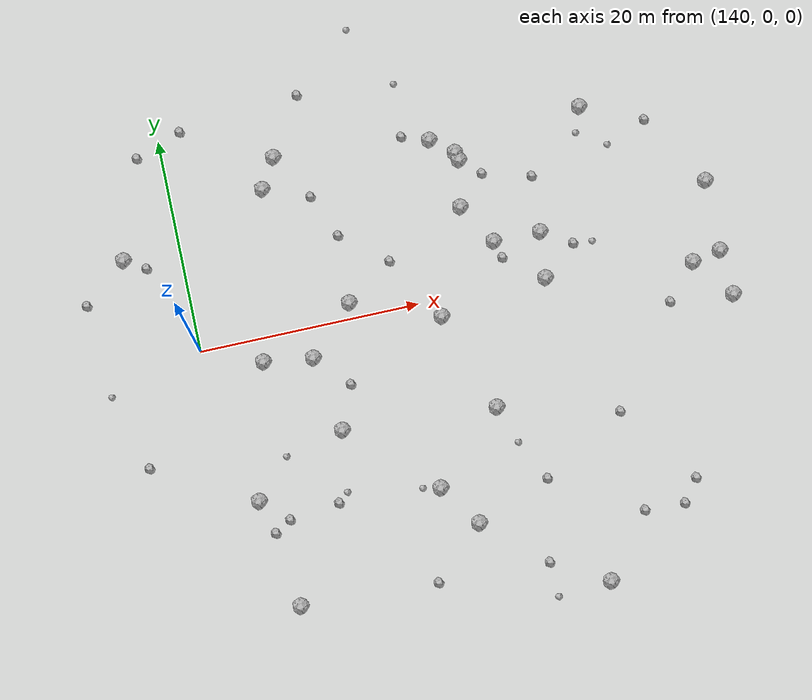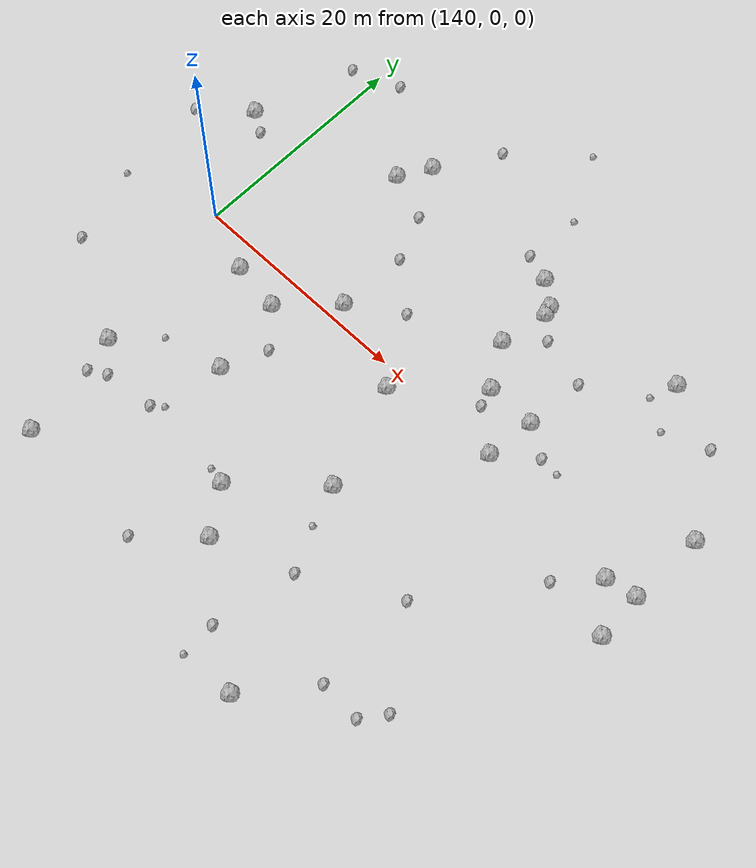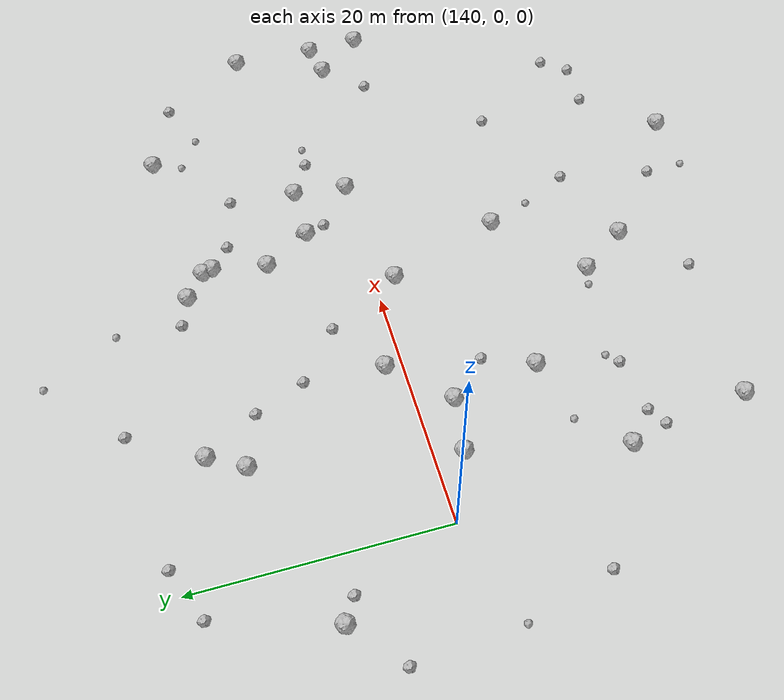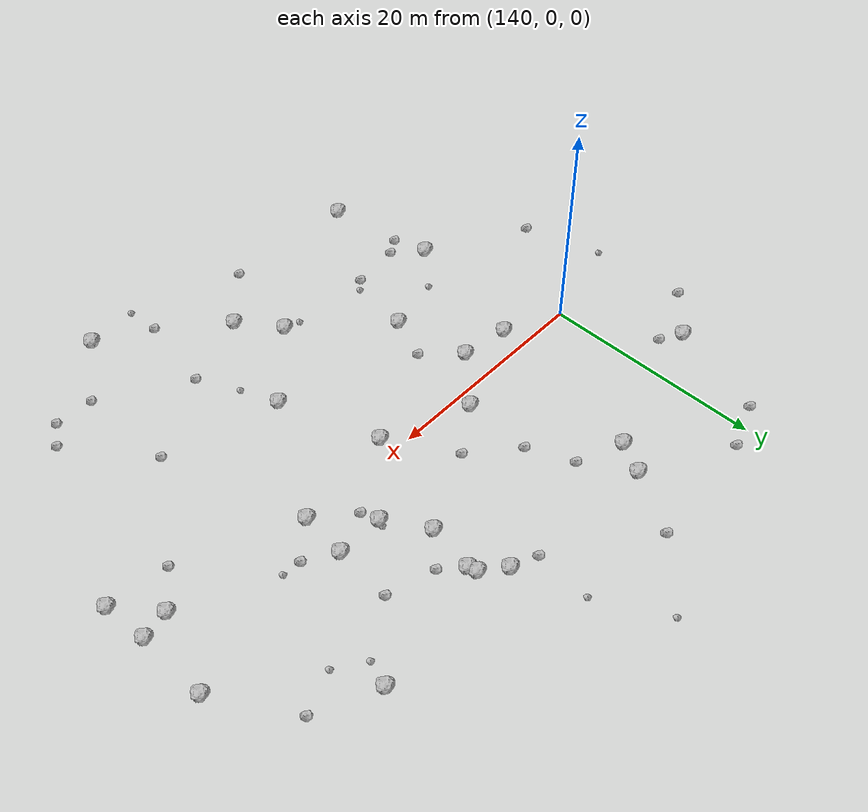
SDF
<sdf version="1.6">
 <world name="default">
  <include><uri>model://sun</uri></include>
  <model name="rock1_4_1">
   <include><uri>model://rock1</uri><pose>161.80515519011735 -1.6194754532843376 0.5 0 0 0</pose></include>
  </model>
  <model name="rock1_4_2">
   <include><uri>model://rock1</uri><pose>160.94510125621554 -20.438330469906347 0.5 0 0 0</pose></include>
  </model>
  <model name="rock1_4_3">
   <include><uri>model://rock1</uri><pose>167.9120655776115 4.134477601905928 0.5 0 0 0</pose></include>
  </model>
  <model name="rock1_4_4">
   <include><uri>model://rock1</uri><pose>172.21672255838706 4.100768969270128 0.5 0 0 0</pose></include>
  </model>
  <model name="rock1_4_5">
   <include><uri>model://rock1</uri><pose>188.00731383352098 5.524143939182565 0.5 0 0 0</pose></include>
  </model>
  <model name="rock1_4_6">
   <include><uri>model://rock1</uri><pose>145.34248808003576 -2.231357947965943 0.5 0 0 0</pose></include>
  </model>
  <model name="rock1_4_7">
   <include><uri>model://rock1</uri><pose>134.88570506128224 9.611785565445707 0.5 0 0 0</pose></include>
  </model>
  <model name="rock1_4_8">
   <include><uri>model://rock1</uri><pose>185.0392295614728 -1.611629681703107 0.5 0 0 0</pose></include>
  </model>
  <model name="rock1_4_9">
   <include><uri>model://rock1</uri><pose>142.47230038669548 -14.382167678178883 0.5 0 0 0</pose></include>
  </model>
  <model name="rock1_4_10">
   <include><uri>model://rock1</uri><pose>166.31861032282322 13.073105930967394 0.5 0 0 0</pose></include>
  </model>
  <model name="rock1_4_11">
   <include><uri>model://rock1</uri><pose>148.4504697667735 13.446553152109551 0.5 0 0 0</pose></include>
  </model>
  <model name="rock1_4_12">
   <include><uri>model://rock1</uri><pose>166.52875699382722 12.276392834867252 0.5 0 0 0</pose></include>
  </model>
  <model name="rock1_4_13">
   <include><uri>model://rock1</uri><pose>144.1674878756672 -24.123384261986253 0.5 0 0 0</pose></include>
  </model>
  <model name="rock1_4_14">
   <include><uri>model://rock1</uri><pose>149.76385183644905 -2.8493653405259707 0.5 0 0 0</pose></include>
  </model>
  <model name="rock1_4_15">
   <include><uri>model://rock1</uri><pose>150.93587333771026 -9.782286461104274 0.5 0 0 0</pose></include>
  </model>
  <model name="rock1_4_16">
   <include><uri>model://rock1</uri><pose>171.7047283698014 -0.1770763584774997 0.5 0 0 0</pose></include>
  </model>
  <model name="rock1_4_17">
   <include><uri>model://rock1</uri><pose>171.04648982816073 -27.852490797840048 0.5 0 0 0</pose></include>
  </model>
  <model name="rock1_4_18">
   <include><uri>model://rock1</uri><pose>165.67383943453757 7.927162680375993 0.5 0 0 0</pose></include>
  </model>
  <model name="rock1_4_19">
   <include><uri>model://rock1</uri><pose>187.68066127147205 -1.0947205974632261 0.5 0 0 0</pose></include>
  </model>
  <model name="rock1_4_20">
   <include><uri>model://rock1</uri><pose>164.76028248211549 -10.724767424552219 0.5 0 0 0</pose></include>
  </model>
  <model name="rock1_4_21">
   <include><uri>model://rock1</uri><pose>153.95168815289077 1.3953138549321622 0.5 0 0 0</pose></include>
  </model>
  <model name="rock1_4_22">
   <include><uri>model://rock1</uri><pose>158.32042079953234 -16.684368764619244 0.5 0 0 0</pose></include>
  </model>
  <model name="rock1_4_23">
   <include><uri>model://rock1</uri><pose>164.30288213298508 14.713580003326882 0.5 0 0 0</pose></include>
  </model>
  <model name="rock1_4_24">
   <include><uri>model://rock1</uri><pose>178.42936760839075 14.863803725115162 0.5 0 0 0</pose></include>
  </model>
  <model name="rock1_4_25">
   <include><uri>model://rock1</uri><pose>150.04066580614133 16.190664270348357 0.5 0 0 0</pose></include>
  </model>
  <model name="rock1_4_26">
   <include><uri>model://rock1</uri><pose>187.85234882888594 -5.279340837206529 0.5 0 0 0</pose></include>
  </model>
  <model name="rock2_4_0">
   <include><uri>model://rock2</uri><pose>156.31091281055518 -24.73939151602947 0.3 0 0 0</pose></include>
  </model>
  <model name="rock2_4_1">
   <include><uri>model://rock2</uri><pose>168.26515572162822 10.640019845447348 0.3 0 0 0</pose></include>
  </model>
  <model name="rock2_4_2">
   <include><uri>model://rock2</uri><pose>168.3214475836068 2.5437500730924256 0.3 0 0 0</pose></include>
  </model>
  <model name="rock2_4_3">
   <include><uri>model://rock2</uri><pose>142.1114065531471 20.455500211470763 0.3 0 0 0</pose></include>
  </model>
  <model name="rock2_4_4">
   <include><uri>model://rock2</uri><pose>161.84325505434205 15.622574256347214 0.3 0 0 0</pose></include>
  </model>
  <model name="rock2_4_5">
   <include><uri>model://rock2</uri><pose>154.24802948812624 7.750721901771634 0.3 0 0 0</pose></include>
  </model>
  <model name="rock2_4_6">
   <include><uri>model://rock2</uri><pose>130.8457027199714 6.219310494611044 0.3 0 0 0</pose></include>
  </model>
  <model name="rock2_4_7">
   <include><uri>model://rock2</uri><pose>180.52394875806522 -20.649716867720194 0.3 0 0 0</pose></include>
  </model>
  <model name="rock2_4_8">
   <include><uri>model://rock2</uri><pose>158.28866428593838 4.408436622698055 0.3 0 0 0</pose></include>
  </model>
  <model name="rock2_4_9">
   <include><uri>model://rock2</uri><pose>183.95956676673273 12.418368647874296 0.3 0 0 0</pose></include>
  </model>
  <model name="rock2_4_10">
   <include><uri>model://rock2</uri><pose>152.51947308306995 -5.8720589369774565 0.3 0 0 0</pose></include>
  </model>
  <model name="rock2_4_11">
   <include><uri>model://rock2</uri><pose>172.66298481280276 9.417478221901675 0.3 0 0 0</pose></include>
  </model>
  <model name="rock2_4_12">
   <include><uri>model://rock2</uri><pose>174.88386603289638 2.4583896643373535 0.3 0 0 0</pose></include>
  </model>
  <model name="rock2_4_13">
   <include><uri>model://rock2</uri><pose>133.57362379610413 -9.445106750487607 0.3 0 0 0</pose></include>
  </model>
  <model name="rock2_4_14">
   <include><uri>model://rock2</uri><pose>144.7726131624133 -16.54172208754902 0.3 0 0 0</pose></include>
  </model>
  <model name="rock2_4_15">
   <include><uri>model://rock2</uri><pose>152.56593946226496 11.853719965941657 0.3 0 0 0</pose></include>
  </model>
  <model name="rock2_4_16">
   <include><uri>model://rock2</uri><pose>179.0104252594141 -22.615020887535017 0.3 0 0 0</pose></include>
  </model>
  <model name="rock2_4_17">
   <include><uri>model://rock2</uri><pose>136.73194504935574 8.469765233102684 0.3 0 0 0</pose></include>
  </model>
  <model name="rock2_4_18">
   <include><uri>model://rock2</uri><pose>175.38868691158484 -13.447157519479617 0.3 0 0 0</pose></include>
  </model>
  <model name="rock2_4_19">
   <include><uri>model://rock2</uri><pose>167.69648467460814 -17.86617807537237 0.3 0 0 0</pose></include>
  </model>
  <model name="rock2_4_20">
   <include><uri>model://rock2</uri><pose>153.31221234497346 21.60414071001035 0.3 0 0 0</pose></include>
  </model>
  <model name="rock2_4_21">
   <include><uri>model://rock2</uri><pose>166.1933148124843 -25.09843928907788 0.3 0 0 0</pose></include>
  </model>
  <model name="rock2_4_22">
   <include><uri>model://rock2</uri><pose>149.28373855182812 -16.02823531463286 0.3 0 0 0</pose></include>
  </model>
  <model name="rock2_4_23">
   <include><uri>model://rock2</uri><pose>137.81243212377962 18.815501443448888 0.3 0 0 0</pose></include>
  </model>
  <model name="rock2_4_24">
   <include><uri>model://rock2</uri><pose>175.42048800986316 -22.462936762649495 0.3 0 0 0</pose></include>
  </model>
  <model name="rock2_4_25">
   <include><uri>model://rock2</uri><pose>143.30215282532225 -17.43446458047402 0.3 0 0 0</pose></include>
  </model>
  <model name="rock2_4_26">
   <include><uri>model://rock2</uri><pose>182.150783435983 -4.722874665221298 0.3 0 0 0</pose></include>
  </model>
  <model name="rock3_4_0">
   <include><uri>model://rock3</uri><pose>165.9110241207561 -14.195370809832514 0.2 0 0 0</pose></include>
  </model>
  <model name="rock3_4_1">
   <include><uri>model://rock3</uri><pose>168.02443900883299 4.640281462952558 0.2 0 0 0</pose></include>
  </model>
  <model name="rock3_4_2">
   <include><uri>model://rock3</uri><pose>176.61679819181523 2.276711940356307 0.2 0 0 0</pose></include>
  </model>
  <model name="rock3_4_3">
   <include><uri>model://rock3</uri><pose>177.53177303319922 12.54503253520555 0.2 0 0 0</pose></include>
  </model>
  <model name="rock3_4_4">
   <include><uri>model://rock3</uri><pose>162.2397494145559 20.728810362086314 0.2 0 0 0</pose></include>
  </model>
  <model name="rock3_4_5">
   <include><uri>model://rock3</uri><pose>166.27044311525967 -28.197559594528222 0.2 0 0 0</pose></include>
  </model>
  <model name="rock3_4_6">
   <include><uri>model://rock3</uri><pose>131.4778816654174 -2.460789469708768 0.2 0 0 0</pose></include>
  </model>
  <model name="rock3_4_7">
   <include><uri>model://rock3</uri><pose>156.75449254390938 -16.3636059876883 0.2 0 0 0</pose></include>
  </model>
  <model name="rock3_4_8">
   <include><uri>model://rock3</uri><pose>150.18719149663926 -15.270632872217721 0.2 0 0 0</pose></include>
  </model>
  <model name="rock3_4_9">
   <include><uri>model://rock3</uri><pose>180.10020534609052 10.837994637343911 0.2 0 0 0</pose></include>
  </model>
  <model name="rock3_4_10">
   <include><uri>model://rock3</uri><pose>145.5880013882114 -11.006992748481327 0.2 0 0 0</pose></include>
  </model>
  <model name="rock3_4_11">
   <include><uri>model://rock3</uri><pose>159.075772757803 26.820018463453266 0.2 0 0 0</pose></include>
  </model>
 </world>
</sdf>
